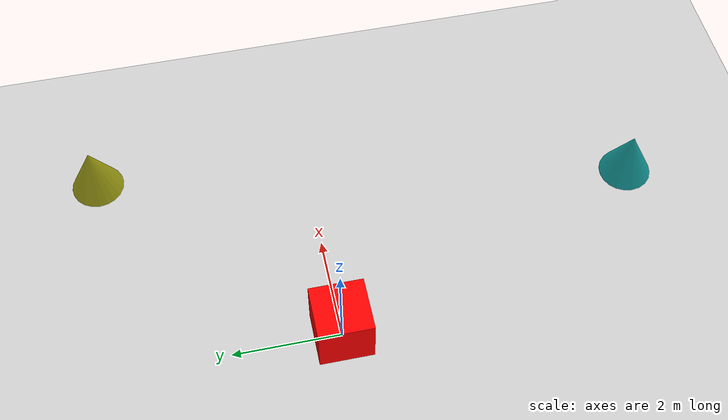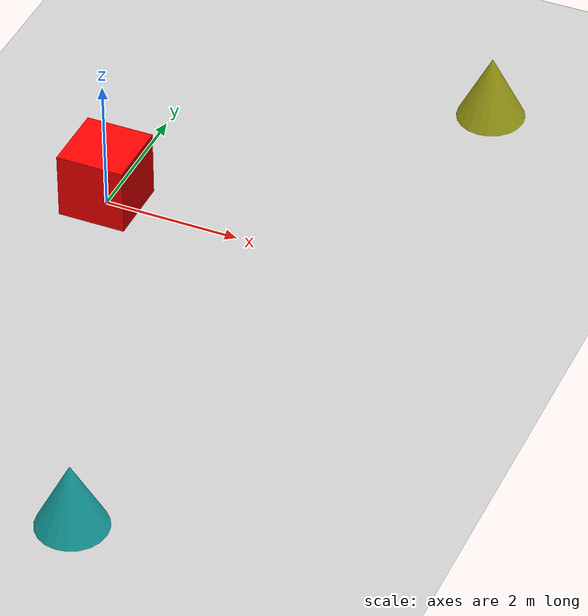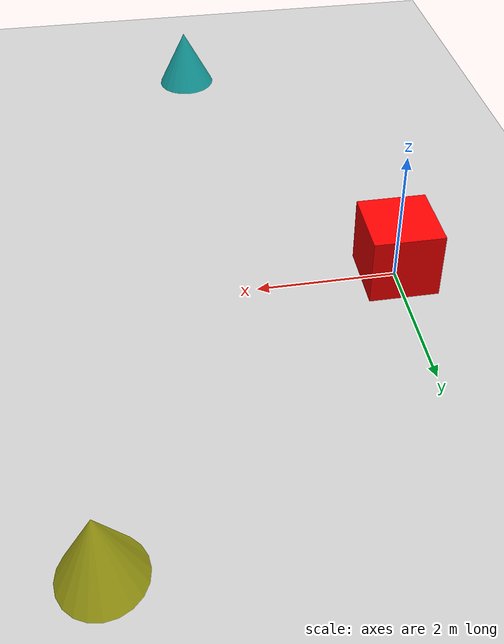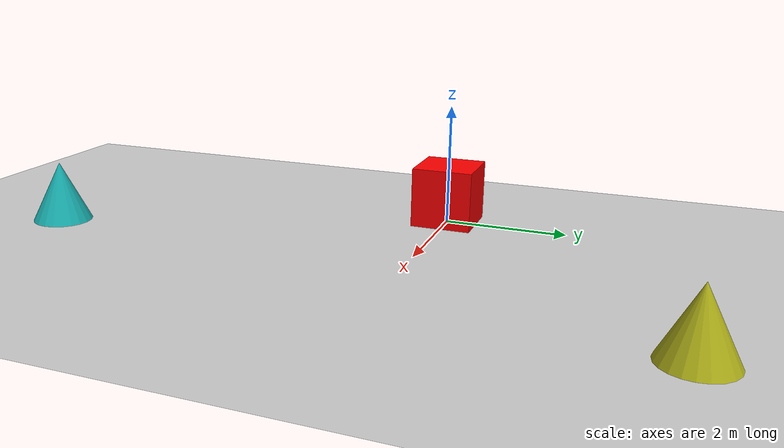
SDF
<sdf version='1.10'>
  <world name='shapes'>
    <scene>
      <ambient>1 1 1 1</ambient>
      <background>0.800000012 0.800000012 0.800000012 1</background>
      <shadows>true</shadows>
    </scene>
    <plugin name='gz::sim::systems::UserCommands' filename='gz-sim-user-commands-system'/>
    <plugin name='gz::sim::systems::SceneBroadcaster' filename='gz-sim-scene-broadcaster-system'/>
    <gravity>0 0 -9.8000000000000007</gravity>
    <magnetic_field>5.5644999999999998e-06 2.2875799999999999e-05 -4.2388400000000002e-05</magnetic_field>
    <atmosphere type='adiabatic'/>
    <plugin name='gz::sim::systems::Physics' filename='gz-sim-physics-system'/>
    <physics type='ode'>
      <max_step_size>0.001</max_step_size>
      <real_time_factor>1</real_time_factor>
      <real_time_update_rate>1000</real_time_update_rate>
    </physics>
    <model name='ground_plane'>
      <static>true</static>
      <link name='link'>
        <collision name='collision'>
          <geometry>
            <plane>
              <normal>0 0 1</normal>
              <size>100 100</size>
            </plane>
          </geometry>
          <surface>
            <friction>
              <ode/>
            </friction>
            <bounce/>
            <contact/>
          </surface>
        </collision>
        <visual name='visual'>
          <geometry>
            <plane>
              <normal>0 0 1</normal>
              <size>100 100</size>
            </plane>
          </geometry>
          <material>
            <ambient>0.800000012 0.800000012 0.800000012 1</ambient>
            <diffuse>0.800000012 0.800000012 0.800000012 1</diffuse>
            <specular>0.800000012 0.800000012 0.800000012 1</specular>
          </material>
        </visual>
        <pose>0 0 0 0 0 0</pose>
        <inertial>
          <pose>0 0 0 0 0 0</pose>
          <mass>1</mass>
          <inertia>
            <ixx>1</ixx>
            <ixy>0</ixy>
            <ixz>0</ixz>
            <iyy>1</iyy>
            <iyz>0</iyz>
            <izz>1</izz>
          </inertia>
        </inertial>
        <enable_wind>false</enable_wind>
      </link>
      <pose>0 0 0 0 0 0</pose>
      <self_collide>false</self_collide>
    </model>
    <model name='box'>
      <plugin name='gz::sim::systems::PosePublisher' filename='gz-sim-pose-publisher-system'>
        <use_pose_vector_msg>true</use_pose_vector_msg>
        <publish_link_pose>false</publish_link_pose>
        <publish_collision_pose>false</publish_collision_pose>
        <publish_visual_pose>false</publish_visual_pose>
        <publish_nested_model_pose>true</publish_nested_model_pose>
      </plugin>
      <plugin name='gz::sim::systems::VelocityControl' filename='gz-sim-velocity-control-system'>
        <initial_linear>0 0 0</initial_linear>
        <initial_angular>0 0 0</initial_angular>
      </plugin>
      <pose>0 0 0.5 0 0 0</pose>
      <link name='box_link'>
        <gravity>false</gravity>
        <inertial>
          <inertia>
            <ixx>0.16666</ixx>
            <ixy>0</ixy>
            <ixz>0</ixz>
            <iyy>0.16666</iyy>
            <iyz>0</iyz>
            <izz>0.16666</izz>
          </inertia>
          <mass>1</mass>
          <pose>0 0 0 0 0 0</pose>
        </inertial>
        <collision name='box_collision'>
          <geometry>
            <box>
              <size>1 1 1</size>
            </box>
          </geometry>
          <surface>
            <friction>
              <ode/>
            </friction>
            <bounce/>
            <contact/>
          </surface>
        </collision>
        <visual name='box_visual'>
          <geometry>
            <box>
              <size>1 1 1</size>
            </box>
          </geometry>
          <material>
            <ambient>1 0 0 1</ambient>
            <diffuse>1 0 0 1</diffuse>
            <specular>1 0 0 1</specular>
          </material>
        </visual>
        <pose>0 0 0 0 0 0</pose>
        <enable_wind>false</enable_wind>
      </link>
      <static>false</static>
      <self_collide>false</self_collide>
    </model>
    <model name='target_0'>
          <plugin name='gz::sim::systems::PosePublisher' filename='gz-sim-pose-publisher-system'>
        <use_pose_vector_msg>true</use_pose_vector_msg>
        <publish_link_pose>false</publish_link_pose>
        <publish_collision_pose>false</publish_collision_pose>
        <publish_visual_pose>false</publish_visual_pose>
        <publish_nested_model_pose>true</publish_nested_model_pose>
      </plugin>
      <pose>4.2126905547983444 4.046332905146655 0.49999999993296756 5.2544987975732369e-17 -7.7132841042377457e-10 -9.1533761874780176e-23</pose>
      <link name='cone_link'>
        <inertial>
          <inertia>
            <ixx>0.074999999999999997</ixx>
            <ixy>0</ixy>
            <ixz>0</ixz>
            <iyy>0.074999999999999997</iyy>
            <iyz>0</iyz>
            <izz>0.074999999999999997</izz>
          </inertia>
          <mass>1</mass>
          <pose>0 0 0 0 0 0</pose>
        </inertial>
        <collision name='cone_collision'>
          <geometry>
            <cone>
              <radius>0.5</radius>
              <length>1</length>
            </cone>
          </geometry>
          <surface>
            <friction>
              <ode/>
            </friction>
            <bounce/>
            <contact/>
          </surface>
        </collision>
        <visual name='cone_visual'>
          <geometry>
            <cone>
              <radius>0.5</radius>
              <length>1</length>
            </cone>
          </geometry>
          <material>
            <ambient>0.300000012 0.300000012 0.300000012 1</ambient>
            <diffuse>0.699999988 0.699999988 0.1 1</diffuse>
            <specular>1 1 1 1</specular>
          </material>
        </visual>
        <pose>0 0 0 0 0 0</pose>
        <enable_wind>false</enable_wind>
      </link>
      <static>false</static>
      <self_collide>false</self_collide>
    </model>
    <model name='target_1'>
          <plugin name='gz::sim::systems::PosePublisher' filename='gz-sim-pose-publisher-system'>
        <use_pose_vector_msg>true</use_pose_vector_msg>
        <publish_link_pose>false</publish_link_pose>
        <publish_collision_pose>false</publish_collision_pose>
        <publish_visual_pose>false</publish_visual_pose>
        <publish_nested_model_pose>true</publish_nested_model_pose>
      </plugin>
      <pose>2.4698219386088955 -6.1937858796137553 0.49999999993296756 5.2544553928747375e-17 -7.7132841042023899e-10 -1.1050866732942511e-22</pose>
      <link name='cone_link'>
        <inertial>
          <inertia>
            <ixx>0.074999999999999997</ixx>
            <ixy>0</ixy>
            <ixz>0</ixz>
            <iyy>0.074999999999999997</iyy>
            <iyz>0</iyz>
            <izz>0.074999999999999997</izz>
          </inertia>
          <mass>1</mass>
          <pose>0 0 0 0 0 0</pose>
        </inertial>
        <collision name='cone_collision'>
          <geometry>
            <cone>
              <radius>0.5</radius>
              <length>1</length>
            </cone>
          </geometry>
          <surface>
            <friction>
              <ode/>
            </friction>
            <bounce/>
            <contact/>
          </surface>
        </collision>
        <visual name='cone_visual'>
          <geometry>
            <cone>
              <radius>0.5</radius>
              <length>1</length>
            </cone>
          </geometry>
          <material>
            <ambient>0.300000012 0.300000012 0.300000012 1</ambient>
            <diffuse>0.1 0.699999988 0.699999988 1</diffuse>
            <specular>1 1 1 1</specular>
          </material>
        </visual>
        <pose>0 0 0 0 0 0</pose>
        <enable_wind>false</enable_wind>
      </link>
      <static>false</static>
      <self_collide>false</self_collide>
    </model>
    <light name='sun' type='directional'>
      <pose>0 0 10 0 0 0</pose>
      <cast_shadows>true</cast_shadows>
      <intensity>1</intensity>
      <direction>-0.5 0.10000000000000001 -0.90000000000000002</direction>
      <diffuse>0.800000012 0.800000012 0.800000012 1</diffuse>
      <specular>0.200000003 0.200000003 0.200000003 1</specular>
      <attenuation>
        <range>1000</range>
        <linear>0.0099999997764825821</linear>
        <constant>0.89999997615814209</constant>
        <quadratic>0.0010000000474974513</quadratic>
      </attenuation>
      <spot>
        <inner_angle>0</inner_angle>
        <outer_angle>0</outer_angle>
        <falloff>0</falloff>
      </spot>
    </light>
  </world>
</sdf>
